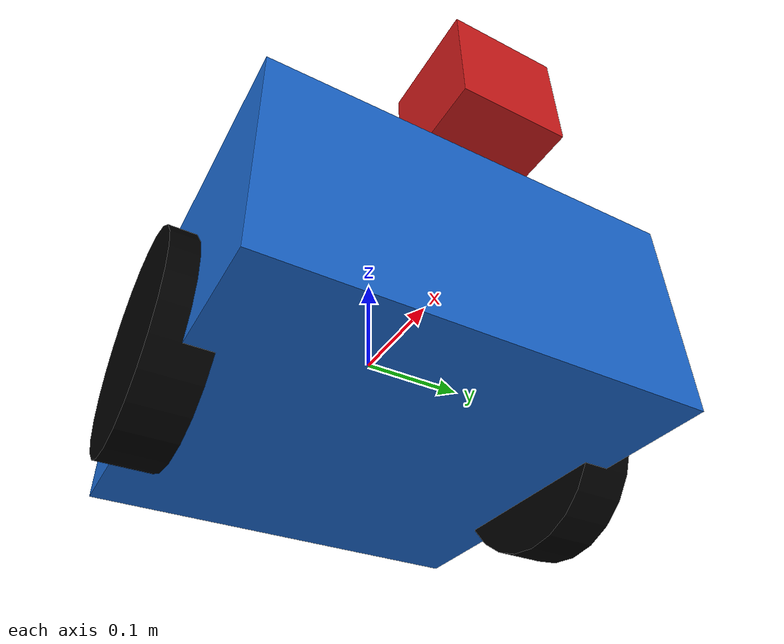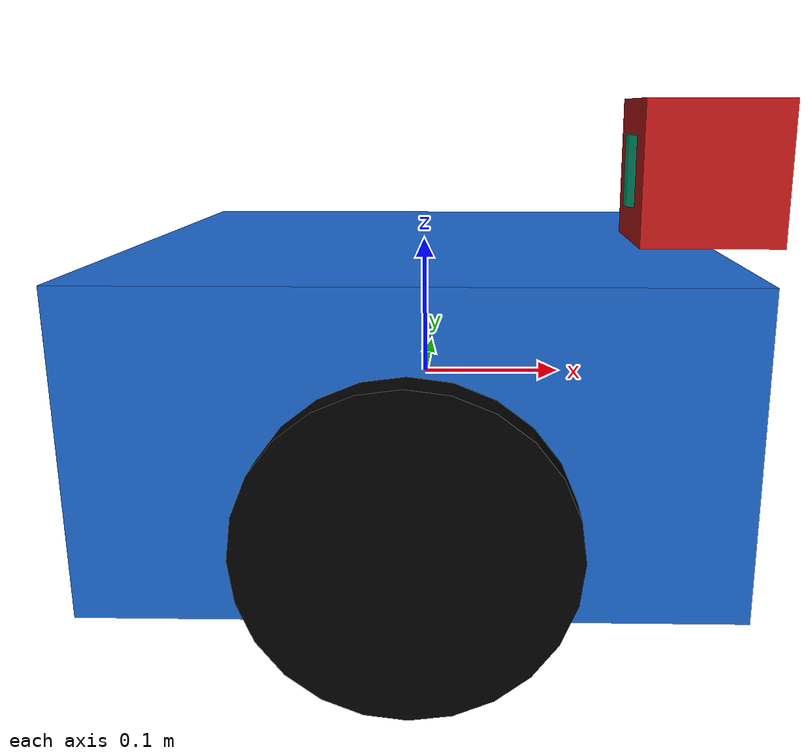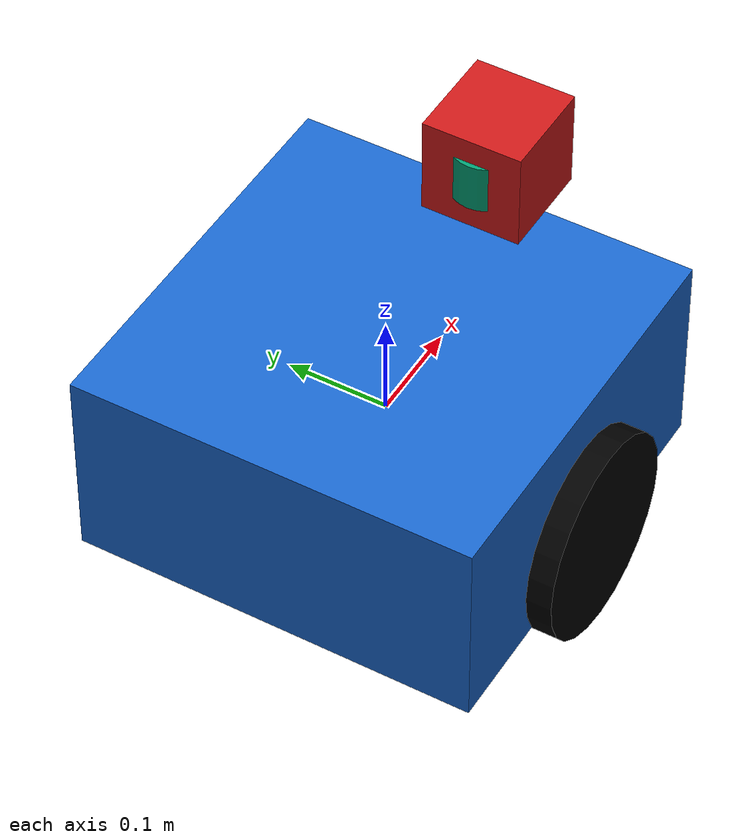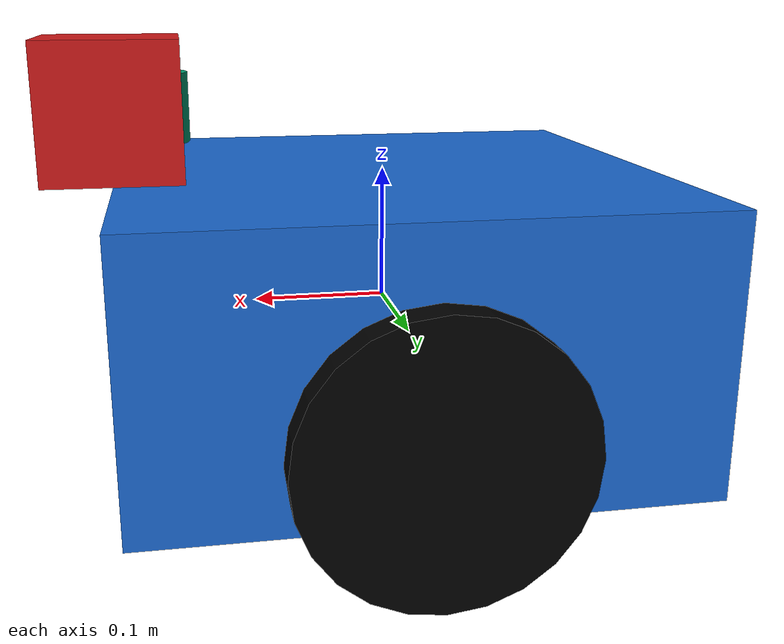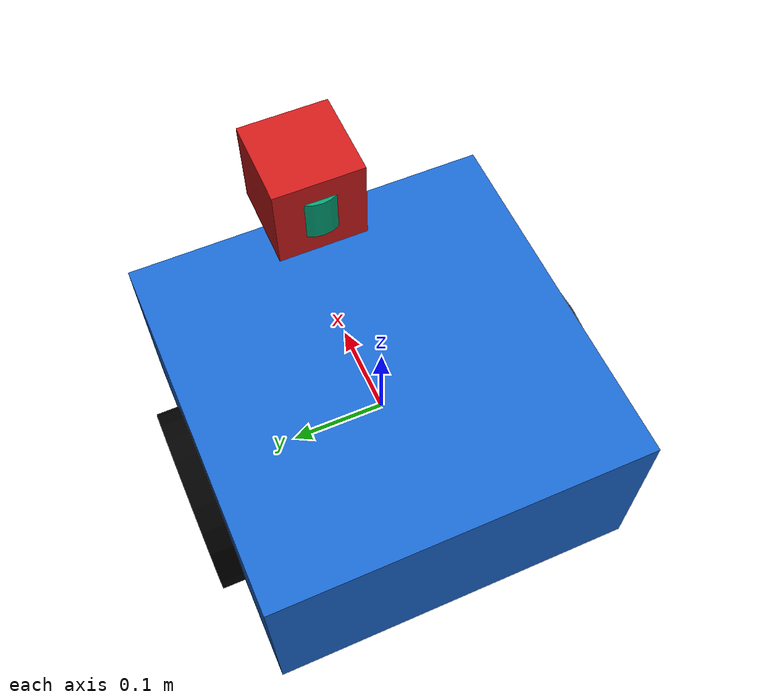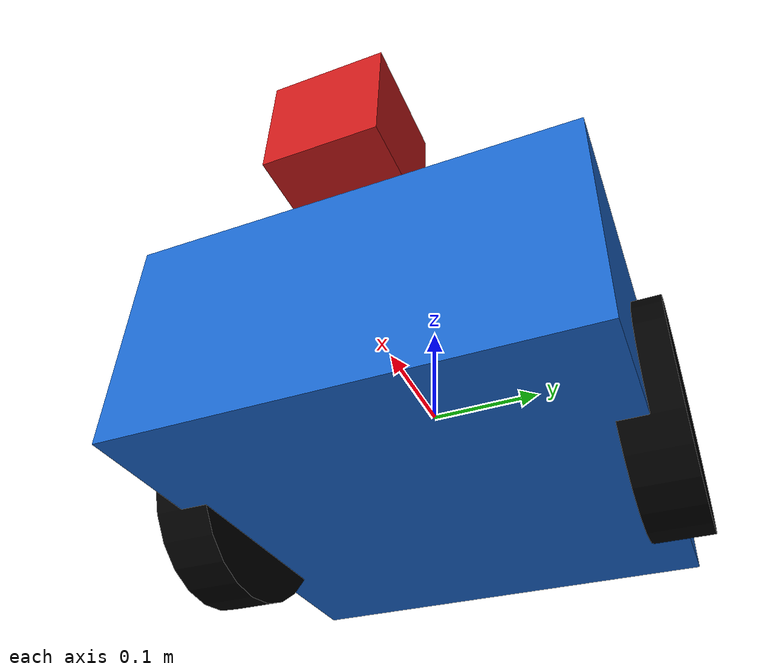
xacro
<?xml version="1.0"?>
<robot name="minimal_robot" xmlns:xacro="http://ros.org/wiki/xacro">

  <!-- outer paramters（changing through launch file） -->
  <xacro:arg name="base_height" default="0.2"/>
  <xacro:arg name="sensor_size" default="0.1"/>

  <!-- inner paramters -->
  <xacro:property name="base_size" value="0.4"/>
  <xacro:property name="base_height" value="$(arg base_height)"/>
  <xacro:property name="sensor_size"  value="$(arg sensor_size)"/>
  <xacro:property name="sensor_offset_z" value="${base_height/2 + sensor_size/2}"/>
  <xacro:property name="wheel_radius" value="0.1"/>
  <xacro:property name="wheel_width" value="0.05"/>

  <!-- base_footprint-->
  <link name="base_footprint"/>

  <joint name="base_footprint_to_base_link" type="fixed">
  <parent link="base_footprint"/>
  <child link="base_link"/>
  <!-- 如果你希望 base_footprint 在 base_link 正下方某个高度，
       可以在这里设置 xyz；目前简化成完全重合 -->
  <origin xyz="0 0 0" rpy="0 0 0"/>
  </joint>

  <!-- base_link -->
  <link name="base_link">
    <visual>
      <origin xyz="0 0 0" rpy="0 0 0"/>
      <geometry>
        <box size="${base_size} ${base_size} ${base_height}"/>
      </geometry>
      <material name="blue">
        <color rgba="0.1 0.4 0.8 1.0"/>
      </material>
    </visual>

    <collision>
        <origin xyz="0 0 0" rpy="0 0 0"/>
        <geometry>
          <box size="${base_size} ${base_size} ${base_height}"/>
        </geometry>
    </collision>

    <inertial>
        <mass value="1.0"/> <!-- kg -->
        <inertia
          ixx="0.01" ixy="0.0" ixz="0.0"
          iyy="0.01" iyz="0.0"
          izz="0.02"/>
    </inertial>
  </link>

    <!-- ========== LiDAR frame ========== -->
  <link name="lidar_link">
    <visual>
      <origin xyz="0 0 0" rpy="0 0 0"/>
      <geometry>
        <cylinder length="0.05" radius="0.035"/>
      </geometry>
    </visual>
    <collision>
      <origin xyz="0 0 0" rpy="0 0 0"/>
      <geometry>
        <cylinder length="0.05" radius="0.035"/>
      </geometry>
    </collision>
    <inertial>
      <mass value="0.2"/>
      <origin xyz="0 0 0" rpy="0 0 0"/>
      <inertia ixx="1e-4" ixy="0" ixz="0" iyy="1e-4" iyz="0" izz="1e-4"/>
    </inertial>
  </link>

  <joint name="lidar_joint" type="fixed">
    <origin xyz="0.18 0 0.15" rpy="0 0 0"/>
    <parent link="base_link"/>
    <child link="lidar_link"/>
  </joint>

  <!-- sensor_link -->
  <link name="sensor_link">
    <visual>
      <origin xyz="0 0 0" rpy="0 0 0"/>
      <geometry>
        <box size="${sensor_size} ${sensor_size} ${sensor_size}"/>
      </geometry>
      <material name="red">
        <color rgba="0.8 0.1 0.1 1.0"/>
      </material>
    </visual>

    <collision>
      <origin xyz="0 0 0" rpy="0 0 0"/>
      <geometry>
        <box size="${sensor_size} ${sensor_size} ${sensor_size}"/>
      </geometry>
    </collision>

    <inertial>
      <mass value="0.05"/>
      <inertia
        ixx="0.00005" ixy="0.0" ixz="0.0"
        iyy="0.00005" iyz="0.0"
        izz="0.00005"/>
    </inertial>
  </link>

  <!-- Joint：auto calculate the height of sensor -->
  <joint name="base_to_sensor" type="fixed">
    <parent link="base_link"/>
    <child link="sensor_link"/>
    <origin xyz="0.2 0 ${sensor_offset_z}" rpy="0 0 0"/>
    <axis xyz="0 0 1"/>
  </joint>

  <!-- left wheel link -->
  <link name="left_wheel_link">
    <visual>
      <origin xyz="0 0 0" rpy="1.5708 0 0"/>
      <geometry>
        <cylinder radius="${wheel_radius}" length="${wheel_width}"/>
      </geometry>
      <material name="black">
        <color rgba="0 0 0 1.0"/>
      </material>
    </visual>

    <collision>
      <origin xyz="0 0 0" rpy="1.5708 0 0"/>
      <geometry>
        <cylinder radius="${wheel_radius}" length="${wheel_width}"/>
      </geometry>
    </collision>

    <inertial>
      <mass value="0.2"/>
      <inertia
        ixx="0.0002" ixy="0.0" ixz="0.0"
        iyy="0.0002" iyz="0.0"
        izz="0.0001"/>
    </inertial>
  </link>

  <!-- left wheel joint -->
  <joint name="left_wheel_joint" type="continuous">
    <parent link="base_link"/>
    <child link="left_wheel_link"/>
    <origin xyz="0 ${base_size/2} ${-base_height/2 + wheel_radius/2}" rpy="0 0 0"/>
    <axis xyz="0 1 0"/>
  </joint>

  <!-- right wheel link -->
  <link name="right_wheel_link">
    <visual>
      <origin xyz="0 0 0" rpy="1.5708 0 0"/>
      <geometry>
        <cylinder radius="${wheel_radius}" length="${wheel_width}"/>
      </geometry>
      <material name="black">
        <color rgba="0 0 0 1.0"/>
      </material>
    </visual>

    <collision>
      <origin xyz="0 0 0" rpy="1.5708 0 0"/>
      <geometry>
        <cylinder radius="${wheel_radius}" length="${wheel_width}"/>
      </geometry>
    </collision>

    <inertial>
      <mass value="0.2"/>
        <inertia
          ixx="0.0002" ixy="0.0" ixz="0.0"
          iyy="0.0002" iyz="0.0"
          izz="0.0001"/>
    </inertial>
  </link>

  <!-- right wheel join -->
  <joint name="right_wheel_joint" type="continuous">
    <parent link="base_link"/>
    <child link="right_wheel_link"/>
    <origin xyz="0 ${-base_size/2} ${-base_height/2 + wheel_radius/2}" rpy="0 0 0"/>
    <axis xyz="0 1 0"/>
  </joint>

  <!-- Gazebo Sim LiDAR -->
  <gazebo reference="lidar_link">
    <sensor name="lidar" type="gpu_lidar">
      <always_on>true</always_on>
      <update_rate>10</update_rate>
      <visualize>false</visualize>
      <topic>/scan</topic>

      <gpu_lidar>
        <horizontal>
          <samples>360</samples>
          <resolution>1</resolution>
          <min_angle>-3.14159265</min_angle>
          <max_angle>3.14159265</max_angle>
        </horizontal>
        <range>
          <min>0.12</min>
          <max>12.0</max>
          <resolution>0.01</resolution>
        </range>
      </gpu_lidar>
    </sensor>
  </gazebo>

</robot>
